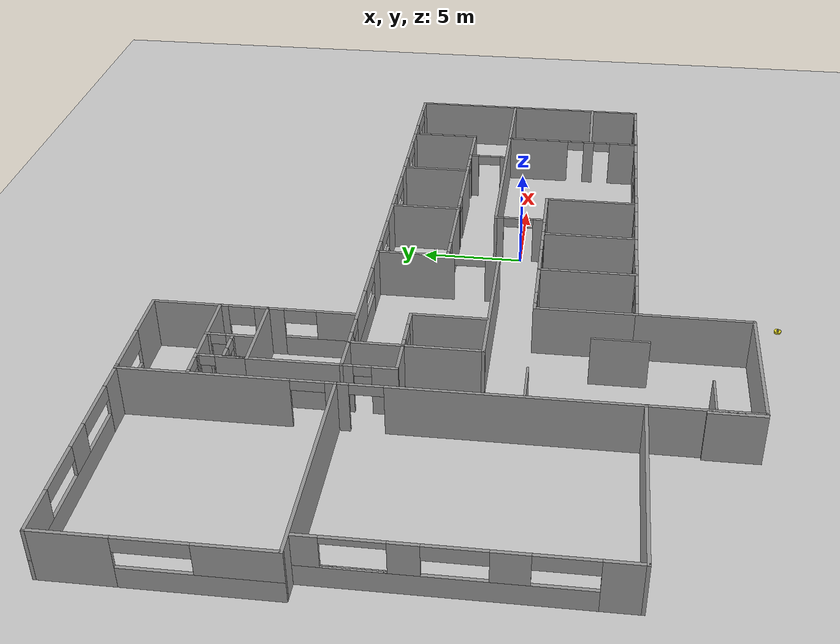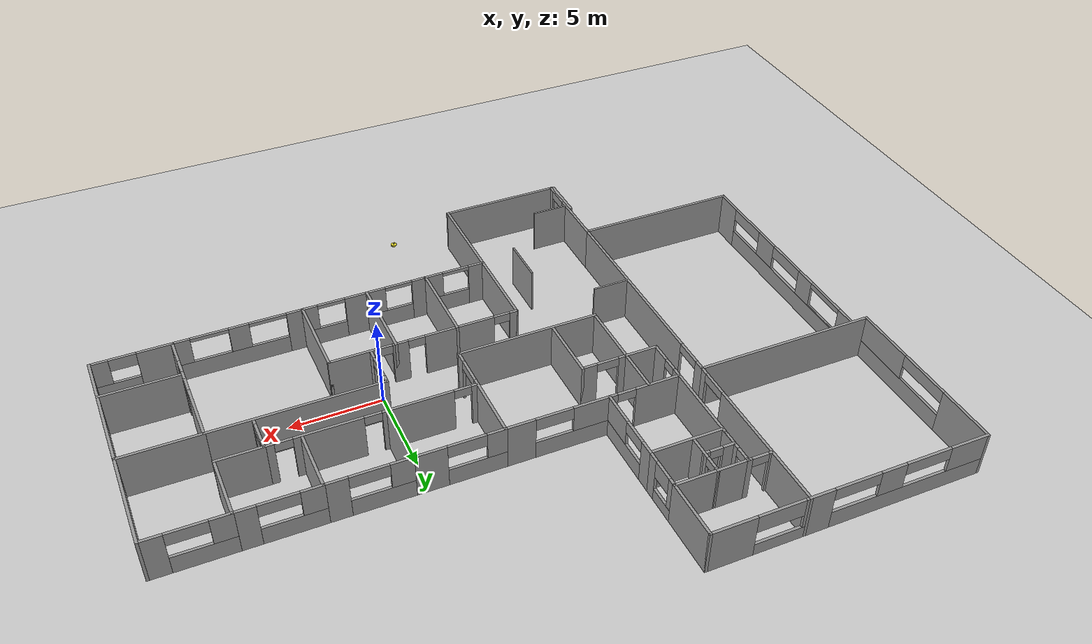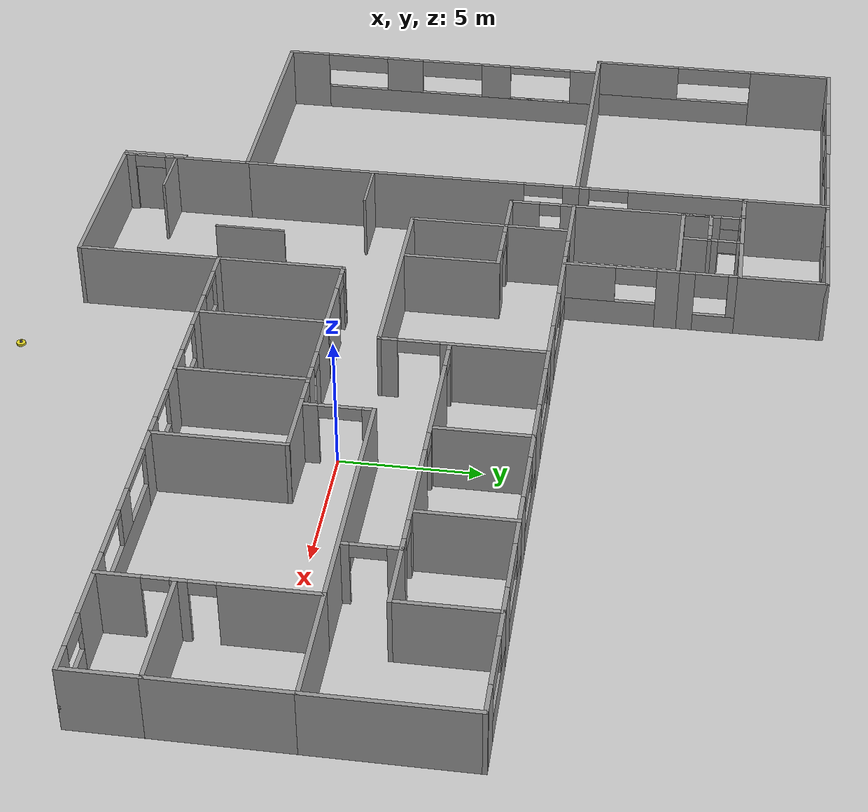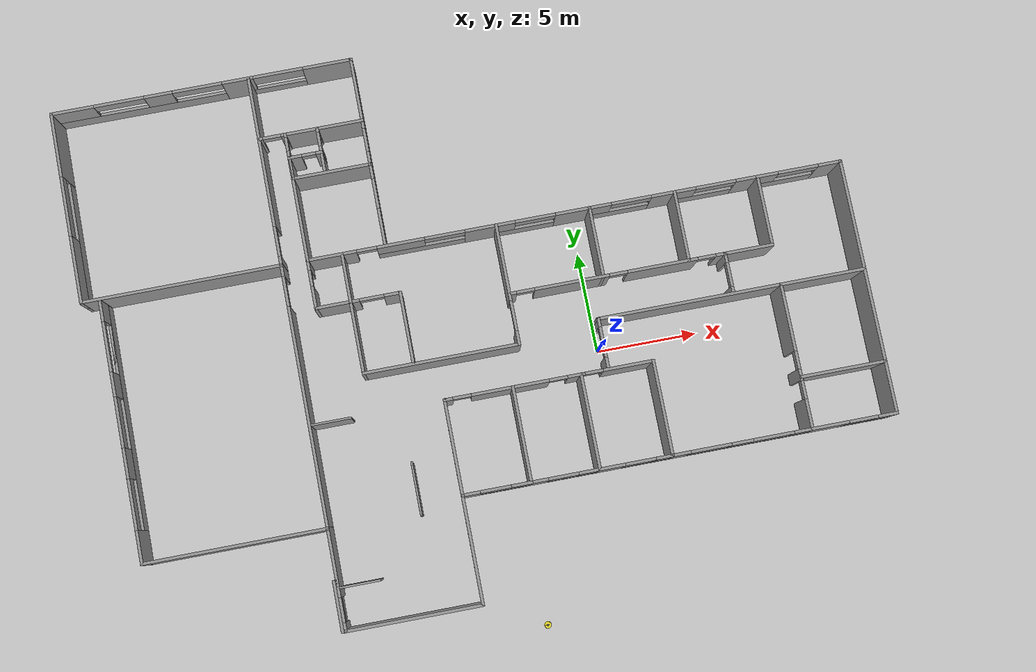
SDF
<sdf version="1.5">
 <world name="default">
  <include><uri>model://sun</uri></include>
  <include><uri>model://ground_plane</uri></include>
  <include><uri>model://iRobot</uri><pose>-5 -12.7 0.05 0 0 0</pose></include>
  <include><uri>model://CentroPiaggio</uri><name>CentroPiaggioMap</name></include>
 </world>
</sdf>
